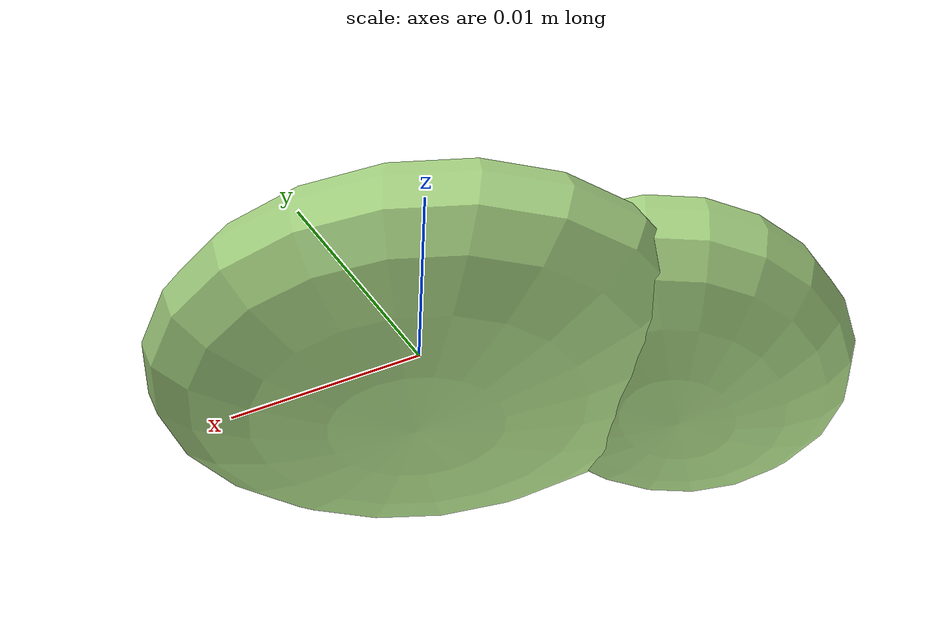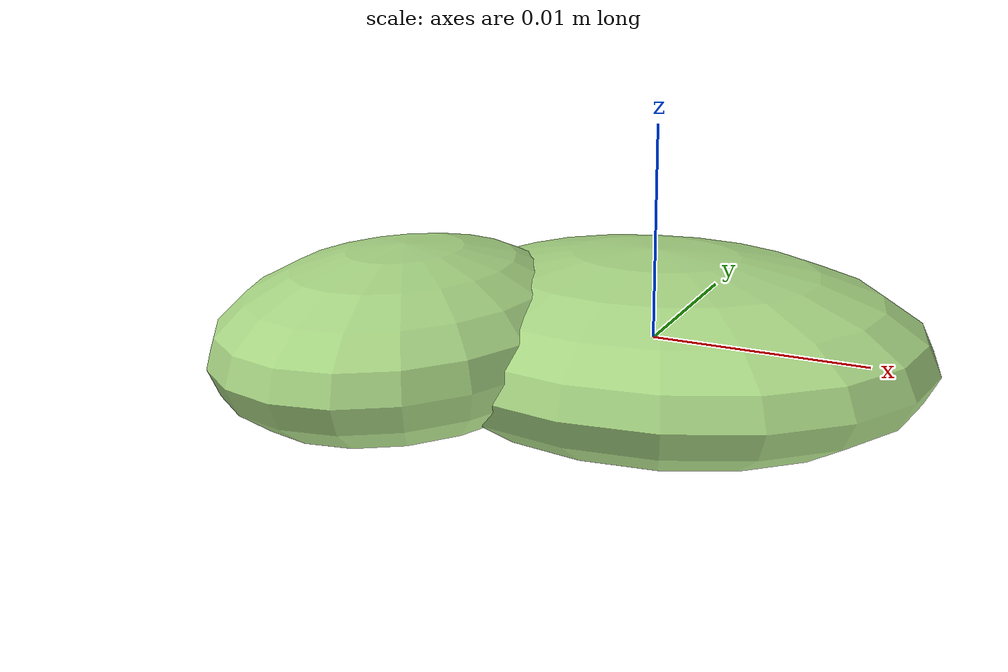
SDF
<?xml version="1.0" ?>
<!-- |    This document was autogenerated by xmacro from data/veggie_template/veggie_base.sdf.xacro  | -->
<!-- |    EDITING THIS FILE BY HAND IS NOT RECOMMENDED                                               | -->
<sdf version="1.8">
	<!-- Parameters -->
	<!-- Base -->
	<!-- Joint 0 -->
	<!-- Link 1 -->
	<!-- Joint 1 -->
	<!-- Link 2 -->
	<!-- Primitives -->
	<!-- All dimensions are half -->
	<!-- Object -->
	<model name="veggie">
		<!-- link0 -->
		<link name="link0">
			<inertial>
				<mass>0.0024863566127626556</mass>
				<inertia>
					<ixx>6.620795913967813e-08</ixx>
					<ixy>0</ixy>
					<ixz>0</ixz>
					<iyy>9.235394529943347e-08</iyy>
					<iyz>0</iyz>
					<izz>1.4032834090851092e-07</izz>
				</inertia>
			</inertial>
			<visual name="link0_visual">
				<pose>0 0 0 0 0 0</pose>
				<geometry>
					<ellipsoid>
						<radii>0.01293784455838809 0.010714891866145548 0.004281777269172319</radii>
					</ellipsoid>
				</geometry>
				<material>
					<ambient>0.659 0.839 0.514 1</ambient>
					<diffuse>0.659 0.839 0.514 1</diffuse>
					<specular>0 0 0 0</specular>
					<emissive>0 0 0 1</emissive>
				</material>
			</visual>
			<collision name="link0_collision">
				<pose>0 0 0 0 0 0 </pose>
				<geometry>
					<ellipsoid>
						<radii>0.01293784455838809 0.010714891866145548 0.004281777269172319</radii>
					</ellipsoid>
				</geometry>
			</collision>
		</link>
		<!-- link1 -->
		<joint name="joint0" type="fixed">
			<pose relative_to="link0">-0.009706332466383786 -0.005883640480784628 0.0008517024476251144 0.0 0.0 0.0</pose>
			<parent>link0</parent>
			<child>link1</child>
		</joint>
		<link name="link1">
			<pose relative_to="joint0">0 0 0 0 0 0</pose>
			<inertial>
				<mass>0.0012964581706191407</mass>
				<inertia>
					<ixx>2.7474525586942246e-08</ixx>
					<ixy>0</ixy>
					<ixz>0</ixz>
					<iyy>2.116106661711158e-08</iyy>
					<iyz>0</iyz>
					<izz>4.012878829289721e-08</izz>
				</inertia>
			</inertial>
			<visual name="link1_visual">
				<pose>0 0 0 0 0 0</pose>
				<geometry>
					<ellipsoid>
						<radii>0.008075093514829735 0.009463403610215691 0.004050176605934522</radii>
					</ellipsoid>
				</geometry>
				<material>
					<ambient>0.659 0.839 0.514 1</ambient>
					<diffuse>0.659 0.839 0.514 1</diffuse>
					<specular>0 0 0 0</specular>
					<emissive>0 0 0 1</emissive>
				</material>
			</visual>
			<collision name="link1_collision">
				<pose>0 0 0 0 0 0 </pose>
				<geometry>
					<ellipsoid>
						<radii>0.008075093514829735 0.009463403610215691 0.004050176605934522</radii>
					</ellipsoid>
				</geometry>
			</collision>
		</link>
		<!-- link2 -->
	</model>
</sdf>
